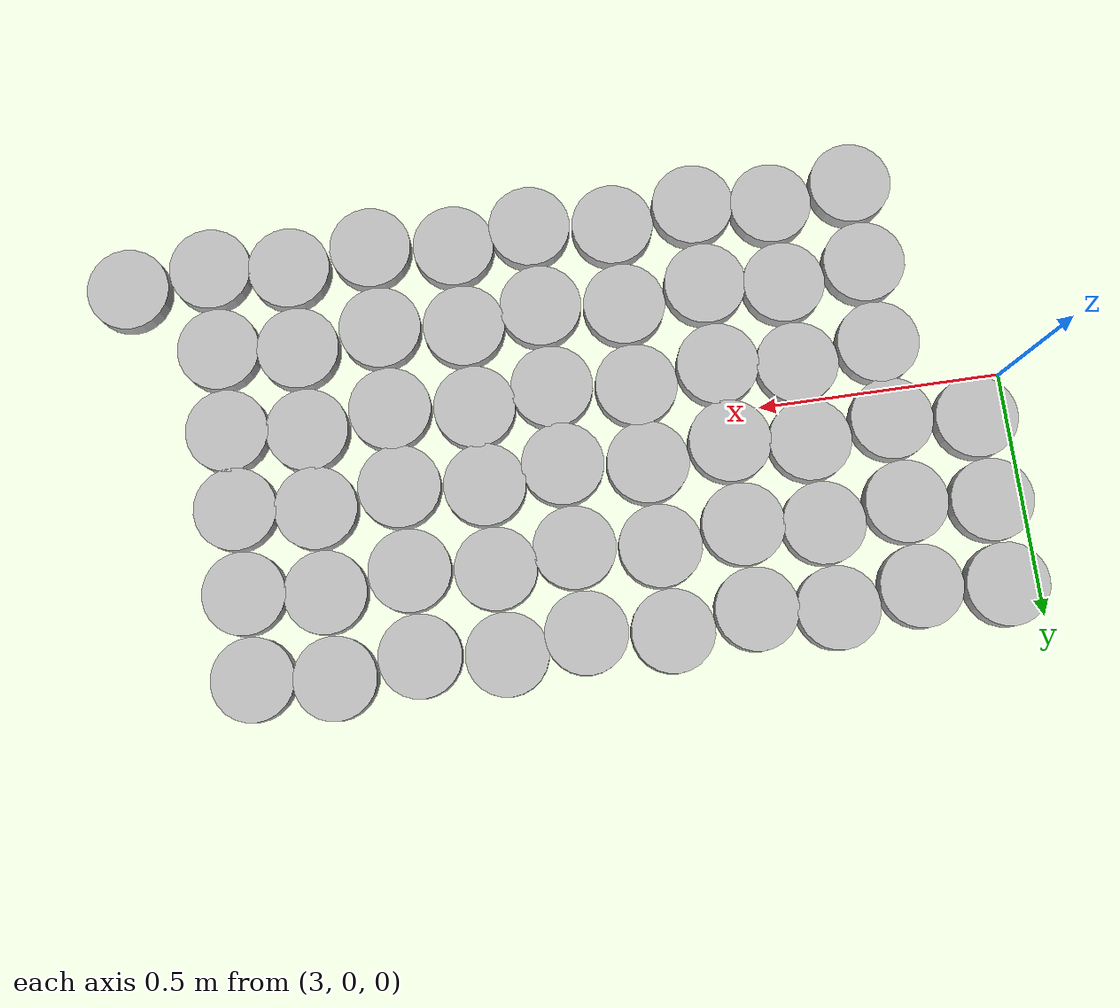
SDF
<sdf version="1.6">
 <world name="default">
  <model name="SnowPuck-9-3-0">
   <pose>3.08 0.09 0.05  0 0 0</pose>
   <link name="link">
    <inertial>
     <mass>0.01</mass>
     <inertia><ixx>0.145833</ixx><ixy>0</ixy><ixz>0</ixz><iyy>0.145833</iyy><iyz>0</iyz><izz>0.125</izz></inertia>
    </inertial>
    <collision name="collision">
     <geometry><cylinder><radius>.05</radius><length>0.04</length></cylinder></geometry>
    </collision>
    <visual name="visual">
     <geometry><cylinder><radius>.083333</radius><length>0.05</length></cylinder></geometry>
    </visual>
   </link>
  </model>
  <model name="SnowPuck-9-4-0">
   <pose>3.08 0.26 0.05  0 0 0</pose>
   <link name="link">
    <inertial>
     <mass>0.01</mass>
     <inertia><ixx>0.145833</ixx><ixy>0</ixy><ixz>0</ixz><iyy>0.145833</iyy><iyz>0</iyz><izz>0.125</izz></inertia>
    </inertial>
    <collision name="collision">
     <geometry><cylinder><radius>.05</radius><length>0.04</length></cylinder></geometry>
    </collision>
    <visual name="visual">
     <geometry><cylinder><radius>.083333</radius><length>0.05</length></cylinder></geometry>
    </visual>
   </link>
  </model>
  <model name="SnowPuck-9-5-0">
   <pose>3.08 0.43 0.05  0 0 0</pose>
   <link name="link">
    <inertial>
     <mass>0.01</mass>
     <inertia><ixx>0.145833</ixx><ixy>0</ixy><ixz>0</ixz><iyy>0.145833</iyy><iyz>0</iyz><izz>0.125</izz></inertia>
    </inertial>
    <collision name="collision">
     <geometry><cylinder><radius>.05</radius><length>0.04</length></cylinder></geometry>
    </collision>
    <visual name="visual">
     <geometry><cylinder><radius>.083333</radius><length>0.05</length></cylinder></geometry>
    </visual>
   </link>
  </model>
  <model name="SnowPuck-10-0-0">
   <pose>3.25 -0.43 0.05  0 0 0</pose>
   <link name="link">
    <inertial>
     <mass>0.01</mass>
     <inertia><ixx>0.145833</ixx><ixy>0</ixy><ixz>0</ixz><iyy>0.145833</iyy><iyz>0</iyz><izz>0.125</izz></inertia>
    </inertial>
    <collision name="collision">
     <geometry><cylinder><radius>.05</radius><length>0.04</length></cylinder></geometry>
    </collision>
    <visual name="visual">
     <geometry><cylinder><radius>.083333</radius><length>0.05</length></cylinder></geometry>
    </visual>
   </link>
  </model>
  <model name="SnowPuck-10-1-0">
   <pose>3.25 -0.26 0.05  0 0 0</pose>
   <link name="link">
    <inertial>
     <mass>0.01</mass>
     <inertia><ixx>0.145833</ixx><ixy>0</ixy><ixz>0</ixz><iyy>0.145833</iyy><iyz>0</iyz><izz>0.125</izz></inertia>
    </inertial>
    <collision name="collision">
     <geometry><cylinder><radius>.05</radius><length>0.04</length></cylinder></geometry>
    </collision>
    <visual name="visual">
     <geometry><cylinder><radius>.083333</radius><length>0.05</length></cylinder></geometry>
    </visual>
   </link>
  </model>
  <model name="SnowPuck-10-2-0">
   <pose>3.25 -0.09 0.05  0 0 0</pose>
   <link name="link">
    <inertial>
     <mass>0.01</mass>
     <inertia><ixx>0.145833</ixx><ixy>0</ixy><ixz>0</ixz><iyy>0.145833</iyy><iyz>0</iyz><izz>0.125</izz></inertia>
    </inertial>
    <collision name="collision">
     <geometry><cylinder><radius>.05</radius><length>0.04</length></cylinder></geometry>
    </collision>
    <visual name="visual">
     <geometry><cylinder><radius>.083333</radius><length>0.05</length></cylinder></geometry>
    </visual>
   </link>
  </model>
  <model name="SnowPuck-10-3-0">
   <pose>3.25 0.07 0.05  0 0 0</pose>
   <link name="link">
    <inertial>
     <mass>0.01</mass>
     <inertia><ixx>0.145833</ixx><ixy>0</ixy><ixz>0</ixz><iyy>0.145833</iyy><iyz>0</iyz><izz>0.125</izz></inertia>
    </inertial>
    <collision name="collision">
     <geometry><cylinder><radius>.05</radius><length>0.04</length></cylinder></geometry>
    </collision>
    <visual name="visual">
     <geometry><cylinder><radius>.083333</radius><length>0.05</length></cylinder></geometry>
    </visual>
   </link>
  </model>
  <model name="SnowPuck-10-4-0">
   <pose>3.25 0.24 0.05  0 0 0</pose>
   <link name="link">
    <inertial>
     <mass>0.01</mass>
     <inertia><ixx>0.145833</ixx><ixy>0</ixy><ixz>0</ixz><iyy>0.145833</iyy><iyz>0</iyz><izz>0.125</izz></inertia>
    </inertial>
    <collision name="collision">
     <geometry><cylinder><radius>.05</radius><length>0.04</length></cylinder></geometry>
    </collision>
    <visual name="visual">
     <geometry><cylinder><radius>.083333</radius><length>0.05</length></cylinder></geometry>
    </visual>
   </link>
  </model>
  <model name="SnowPuck-10-5-0">
   <pose>3.25 0.41 0.05  0 0 0</pose>
   <link name="link">
    <inertial>
     <mass>0.01</mass>
     <inertia><ixx>0.145833</ixx><ixy>0</ixy><ixz>0</ixz><iyy>0.145833</iyy><iyz>0</iyz><izz>0.125</izz></inertia>
    </inertial>
    <collision name="collision">
     <geometry><cylinder><radius>.05</radius><length>0.04</length></cylinder></geometry>
    </collision>
    <visual name="visual">
     <geometry><cylinder><radius>.083333</radius><length>0.05</length></cylinder></geometry>
    </visual>
   </link>
  </model>
  <model name="SnowPuck-11-0-0">
   <pose>3.42 -0.41 0.05  0 0 0</pose>
   <link name="link">
    <inertial>
     <mass>0.01</mass>
     <inertia><ixx>0.145833</ixx><ixy>0</ixy><ixz>0</ixz><iyy>0.145833</iyy><iyz>0</iyz><izz>0.125</izz></inertia>
    </inertial>
    <collision name="collision">
     <geometry><cylinder><radius>.05</radius><length>0.04</length></cylinder></geometry>
    </collision>
    <visual name="visual">
     <geometry><cylinder><radius>.083333</radius><length>0.05</length></cylinder></geometry>
    </visual>
   </link>
  </model>
  <model name="SnowPuck-11-1-0">
   <pose>3.42 -0.24 0.05  0 0 0</pose>
   <link name="link">
    <inertial>
     <mass>0.01</mass>
     <inertia><ixx>0.145833</ixx><ixy>0</ixy><ixz>0</ixz><iyy>0.145833</iyy><iyz>0</iyz><izz>0.125</izz></inertia>
    </inertial>
    <collision name="collision">
     <geometry><cylinder><radius>.05</radius><length>0.04</length></cylinder></geometry>
    </collision>
    <visual name="visual">
     <geometry><cylinder><radius>.083333</radius><length>0.05</length></cylinder></geometry>
    </visual>
   </link>
  </model>
  <model name="SnowPuck-11-2-0">
   <pose>3.42 -0.07 0.05  0 0 0</pose>
   <link name="link">
    <inertial>
     <mass>0.01</mass>
     <inertia><ixx>0.145833</ixx><ixy>0</ixy><ixz>0</ixz><iyy>0.145833</iyy><iyz>0</iyz><izz>0.125</izz></inertia>
    </inertial>
    <collision name="collision">
     <geometry><cylinder><radius>.05</radius><length>0.04</length></cylinder></geometry>
    </collision>
    <visual name="visual">
     <geometry><cylinder><radius>.083333</radius><length>0.05</length></cylinder></geometry>
    </visual>
   </link>
  </model>
  <model name="SnowPuck-11-3-0">
   <pose>3.42 0.09 0.05  0 0 0</pose>
   <link name="link">
    <inertial>
     <mass>0.01</mass>
     <inertia><ixx>0.145833</ixx><ixy>0</ixy><ixz>0</ixz><iyy>0.145833</iyy><iyz>0</iyz><izz>0.125</izz></inertia>
    </inertial>
    <collision name="collision">
     <geometry><cylinder><radius>.05</radius><length>0.04</length></cylinder></geometry>
    </collision>
    <visual name="visual">
     <geometry><cylinder><radius>.083333</radius><length>0.05</length></cylinder></geometry>
    </visual>
   </link>
  </model>
  <model name="SnowPuck-11-4-0">
   <pose>3.42 0.26 0.05  0 0 0</pose>
   <link name="link">
    <inertial>
     <mass>0.01</mass>
     <inertia><ixx>0.145833</ixx><ixy>0</ixy><ixz>0</ixz><iyy>0.145833</iyy><iyz>0</iyz><izz>0.125</izz></inertia>
    </inertial>
    <collision name="collision">
     <geometry><cylinder><radius>.05</radius><length>0.04</length></cylinder></geometry>
    </collision>
    <visual name="visual">
     <geometry><cylinder><radius>.083333</radius><length>0.05</length></cylinder></geometry>
    </visual>
   </link>
  </model>
  <model name="SnowPuck-11-5-0">
   <pose>3.42 0.43 0.05  0 0 0</pose>
   <link name="link">
    <inertial>
     <mass>0.01</mass>
     <inertia><ixx>0.145833</ixx><ixy>0</ixy><ixz>0</ixz><iyy>0.145833</iyy><iyz>0</iyz><izz>0.125</izz></inertia>
    </inertial>
    <collision name="collision">
     <geometry><cylinder><radius>.05</radius><length>0.04</length></cylinder></geometry>
    </collision>
    <visual name="visual">
     <geometry><cylinder><radius>.083333</radius><length>0.05</length></cylinder></geometry>
    </visual>
   </link>
  </model>
  <model name="SnowPuck-12-0-0">
   <pose>3.58 -0.43 0.05  0 0 0</pose>
   <link name="link">
    <inertial>
     <mass>0.01</mass>
     <inertia><ixx>0.145833</ixx><ixy>0</ixy><ixz>0</ixz><iyy>0.145833</iyy><iyz>0</iyz><izz>0.125</izz></inertia>
    </inertial>
    <collision name="collision">
     <geometry><cylinder><radius>.05</radius><length>0.04</length></cylinder></geometry>
    </collision>
    <visual name="visual">
     <geometry><cylinder><radius>.083333</radius><length>0.05</length></cylinder></geometry>
    </visual>
   </link>
  </model>
  <model name="SnowPuck-12-1-0">
   <pose>3.58 -0.26 0.05  0 0 0</pose>
   <link name="link">
    <inertial>
     <mass>0.01</mass>
     <inertia><ixx>0.145833</ixx><ixy>0</ixy><ixz>0</ixz><iyy>0.145833</iyy><iyz>0</iyz><izz>0.125</izz></inertia>
    </inertial>
    <collision name="collision">
     <geometry><cylinder><radius>.05</radius><length>0.04</length></cylinder></geometry>
    </collision>
    <visual name="visual">
     <geometry><cylinder><radius>.083333</radius><length>0.05</length></cylinder></geometry>
    </visual>
   </link>
  </model>
  <model name="SnowPuck-12-2-0">
   <pose>3.58 -0.09 0.05  0 0 0</pose>
   <link name="link">
    <inertial>
     <mass>0.01</mass>
     <inertia><ixx>0.145833</ixx><ixy>0</ixy><ixz>0</ixz><iyy>0.145833</iyy><iyz>0</iyz><izz>0.125</izz></inertia>
    </inertial>
    <collision name="collision">
     <geometry><cylinder><radius>.05</radius><length>0.04</length></cylinder></geometry>
    </collision>
    <visual name="visual">
     <geometry><cylinder><radius>.083333</radius><length>0.05</length></cylinder></geometry>
    </visual>
   </link>
  </model>
  <model name="SnowPuck-12-3-0">
   <pose>3.58 0.07 0.05  0 0 0</pose>
   <link name="link">
    <inertial>
     <mass>0.01</mass>
     <inertia><ixx>0.145833</ixx><ixy>0</ixy><ixz>0</ixz><iyy>0.145833</iyy><iyz>0</iyz><izz>0.125</izz></inertia>
    </inertial>
    <collision name="collision">
     <geometry><cylinder><radius>.05</radius><length>0.04</length></cylinder></geometry>
    </collision>
    <visual name="visual">
     <geometry><cylinder><radius>.083333</radius><length>0.05</length></cylinder></geometry>
    </visual>
   </link>
  </model>
  <model name="SnowPuck-12-4-0">
   <pose>3.58 0.24 0.05  0 0 0</pose>
   <link name="link">
    <inertial>
     <mass>0.01</mass>
     <inertia><ixx>0.145833</ixx><ixy>0</ixy><ixz>0</ixz><iyy>0.145833</iyy><iyz>0</iyz><izz>0.125</izz></inertia>
    </inertial>
    <collision name="collision">
     <geometry><cylinder><radius>.05</radius><length>0.04</length></cylinder></geometry>
    </collision>
    <visual name="visual">
     <geometry><cylinder><radius>.083333</radius><length>0.05</length></cylinder></geometry>
    </visual>
   </link>
  </model>
  <model name="SnowPuck-12-5-0">
   <pose>3.58 0.41 0.05  0 0 0</pose>
   <link name="link">
    <inertial>
     <mass>0.01</mass>
     <inertia><ixx>0.145833</ixx><ixy>0</ixy><ixz>0</ixz><iyy>0.145833</iyy><iyz>0</iyz><izz>0.125</izz></inertia>
    </inertial>
    <collision name="collision">
     <geometry><cylinder><radius>.05</radius><length>0.04</length></cylinder></geometry>
    </collision>
    <visual name="visual">
     <geometry><cylinder><radius>.083333</radius><length>0.05</length></cylinder></geometry>
    </visual>
   </link>
  </model>
  <model name="SnowPuck-13-0-0">
   <pose>3.75 -0.41 0.05  0 0 0</pose>
   <link name="link">
    <inertial>
     <mass>0.01</mass>
     <inertia><ixx>0.145833</ixx><ixy>0</ixy><ixz>0</ixz><iyy>0.145833</iyy><iyz>0</iyz><izz>0.125</izz></inertia>
    </inertial>
    <collision name="collision">
     <geometry><cylinder><radius>.05</radius><length>0.04</length></cylinder></geometry>
    </collision>
    <visual name="visual">
     <geometry><cylinder><radius>.083333</radius><length>0.05</length></cylinder></geometry>
    </visual>
   </link>
  </model>
  <model name="SnowPuck-13-1-0">
   <pose>3.75 -0.24 0.05  0 0 0</pose>
   <link name="link">
    <inertial>
     <mass>0.01</mass>
     <inertia><ixx>0.145833</ixx><ixy>0</ixy><ixz>0</ixz><iyy>0.145833</iyy><iyz>0</iyz><izz>0.125</izz></inertia>
    </inertial>
    <collision name="collision">
     <geometry><cylinder><radius>.05</radius><length>0.04</length></cylinder></geometry>
    </collision>
    <visual name="visual">
     <geometry><cylinder><radius>.083333</radius><length>0.05</length></cylinder></geometry>
    </visual>
   </link>
  </model>
  <model name="SnowPuck-13-2-0">
   <pose>3.75 -0.07 0.05  0 0 0</pose>
   <link name="link">
    <inertial>
     <mass>0.01</mass>
     <inertia><ixx>0.145833</ixx><ixy>0</ixy><ixz>0</ixz><iyy>0.145833</iyy><iyz>0</iyz><izz>0.125</izz></inertia>
    </inertial>
    <collision name="collision">
     <geometry><cylinder><radius>.05</radius><length>0.04</length></cylinder></geometry>
    </collision>
    <visual name="visual">
     <geometry><cylinder><radius>.083333</radius><length>0.05</length></cylinder></geometry>
    </visual>
   </link>
  </model>
  <model name="SnowPuck-13-3-0">
   <pose>3.75 0.09 0.05  0 0 0</pose>
   <link name="link">
    <inertial>
     <mass>0.01</mass>
     <inertia><ixx>0.145833</ixx><ixy>0</ixy><ixz>0</ixz><iyy>0.145833</iyy><iyz>0</iyz><izz>0.125</izz></inertia>
    </inertial>
    <collision name="collision">
     <geometry><cylinder><radius>.05</radius><length>0.04</length></cylinder></geometry>
    </collision>
    <visual name="visual">
     <geometry><cylinder><radius>.083333</radius><length>0.05</length></cylinder></geometry>
    </visual>
   </link>
  </model>
  <model name="SnowPuck-13-4-0">
   <pose>3.75 0.26 0.05  0 0 0</pose>
   <link name="link">
    <inertial>
     <mass>0.01</mass>
     <inertia><ixx>0.145833</ixx><ixy>0</ixy><ixz>0</ixz><iyy>0.145833</iyy><iyz>0</iyz><izz>0.125</izz></inertia>
    </inertial>
    <collision name="collision">
     <geometry><cylinder><radius>.05</radius><length>0.04</length></cylinder></geometry>
    </collision>
    <visual name="visual">
     <geometry><cylinder><radius>.083333</radius><length>0.05</length></cylinder></geometry>
    </visual>
   </link>
  </model>
  <model name="SnowPuck-13-5-0">
   <pose>3.75 0.43 0.05  0 0 0</pose>
   <link name="link">
    <inertial>
     <mass>0.01</mass>
     <inertia><ixx>0.145833</ixx><ixy>0</ixy><ixz>0</ixz><iyy>0.145833</iyy><iyz>0</iyz><izz>0.125</izz></inertia>
    </inertial>
    <collision name="collision">
     <geometry><cylinder><radius>.05</radius><length>0.04</length></cylinder></geometry>
    </collision>
    <visual name="visual">
     <geometry><cylinder><radius>.083333</radius><length>0.05</length></cylinder></geometry>
    </visual>
   </link>
  </model>
  <model name="SnowPuck-14-0-0">
   <pose>3.92 -0.43 0.05  0 0 0</pose>
   <link name="link">
    <inertial>
     <mass>0.01</mass>
     <inertia><ixx>0.145833</ixx><ixy>0</ixy><ixz>0</ixz><iyy>0.145833</iyy><iyz>0</iyz><izz>0.125</izz></inertia>
    </inertial>
    <collision name="collision">
     <geometry><cylinder><radius>.05</radius><length>0.04</length></cylinder></geometry>
    </collision>
    <visual name="visual">
     <geometry><cylinder><radius>.083333</radius><length>0.05</length></cylinder></geometry>
    </visual>
   </link>
  </model>
  <model name="SnowPuck-14-1-0">
   <pose>3.92 -0.26 0.05  0 0 0</pose>
   <link name="link">
    <inertial>
     <mass>0.01</mass>
     <inertia><ixx>0.145833</ixx><ixy>0</ixy><ixz>0</ixz><iyy>0.145833</iyy><iyz>0</iyz><izz>0.125</izz></inertia>
    </inertial>
    <collision name="collision">
     <geometry><cylinder><radius>.05</radius><length>0.04</length></cylinder></geometry>
    </collision>
    <visual name="visual">
     <geometry><cylinder><radius>.083333</radius><length>0.05</length></cylinder></geometry>
    </visual>
   </link>
  </model>
  <model name="SnowPuck-14-2-0">
   <pose>3.92 -0.09 0.05  0 0 0</pose>
   <link name="link">
    <inertial>
     <mass>0.01</mass>
     <inertia><ixx>0.145833</ixx><ixy>0</ixy><ixz>0</ixz><iyy>0.145833</iyy><iyz>0</iyz><izz>0.125</izz></inertia>
    </inertial>
    <collision name="collision">
     <geometry><cylinder><radius>.05</radius><length>0.04</length></cylinder></geometry>
    </collision>
    <visual name="visual">
     <geometry><cylinder><radius>.083333</radius><length>0.05</length></cylinder></geometry>
    </visual>
   </link>
  </model>
  <model name="SnowPuck-14-3-0">
   <pose>3.92 0.07 0.05  0 0 0</pose>
   <link name="link">
    <inertial>
     <mass>0.01</mass>
     <inertia><ixx>0.145833</ixx><ixy>0</ixy><ixz>0</ixz><iyy>0.145833</iyy><iyz>0</iyz><izz>0.125</izz></inertia>
    </inertial>
    <collision name="collision">
     <geometry><cylinder><radius>.05</radius><length>0.04</length></cylinder></geometry>
    </collision>
    <visual name="visual">
     <geometry><cylinder><radius>.083333</radius><length>0.05</length></cylinder></geometry>
    </visual>
   </link>
  </model>
  <model name="SnowPuck-14-4-0">
   <pose>3.92 0.24 0.05  0 0 0</pose>
   <link name="link">
    <inertial>
     <mass>0.01</mass>
     <inertia><ixx>0.145833</ixx><ixy>0</ixy><ixz>0</ixz><iyy>0.145833</iyy><iyz>0</iyz><izz>0.125</izz></inertia>
    </inertial>
    <collision name="collision">
     <geometry><cylinder><radius>.05</radius><length>0.04</length></cylinder></geometry>
    </collision>
    <visual name="visual">
     <geometry><cylinder><radius>.083333</radius><length>0.05</length></cylinder></geometry>
    </visual>
   </link>
  </model>
  <model name="SnowPuck-14-5-0">
   <pose>3.92 0.41 0.05  0 0 0</pose>
   <link name="link">
    <inertial>
     <mass>0.01</mass>
     <inertia><ixx>0.145833</ixx><ixy>0</ixy><ixz>0</ixz><iyy>0.145833</iyy><iyz>0</iyz><izz>0.125</izz></inertia>
    </inertial>
    <collision name="collision">
     <geometry><cylinder><radius>.05</radius><length>0.04</length></cylinder></geometry>
    </collision>
    <visual name="visual">
     <geometry><cylinder><radius>.083333</radius><length>0.05</length></cylinder></geometry>
    </visual>
   </link>
  </model>
  <model name="SnowPuck-15-0-0">
   <pose>4.08 -0.41 0.05  0 0 0</pose>
   <link name="link">
    <inertial>
     <mass>0.01</mass>
     <inertia><ixx>0.145833</ixx><ixy>0</ixy><ixz>0</ixz><iyy>0.145833</iyy><iyz>0</iyz><izz>0.125</izz></inertia>
    </inertial>
    <collision name="collision">
     <geometry><cylinder><radius>.05</radius><length>0.04</length></cylinder></geometry>
    </collision>
    <visual name="visual">
     <geometry><cylinder><radius>.083333</radius><length>0.05</length></cylinder></geometry>
    </visual>
   </link>
  </model>
  <model name="SnowPuck-15-1-0">
   <pose>4.08 -0.24 0.05  0 0 0</pose>
   <link name="link">
    <inertial>
     <mass>0.01</mass>
     <inertia><ixx>0.145833</ixx><ixy>0</ixy><ixz>0</ixz><iyy>0.145833</iyy><iyz>0</iyz><izz>0.125</izz></inertia>
    </inertial>
    <collision name="collision">
     <geometry><cylinder><radius>.05</radius><length>0.04</length></cylinder></geometry>
    </collision>
    <visual name="visual">
     <geometry><cylinder><radius>.083333</radius><length>0.05</length></cylinder></geometry>
    </visual>
   </link>
  </model>
  <model name="SnowPuck-15-2-0">
   <pose>4.08 -0.07 0.05  0 0 0</pose>
   <link name="link">
    <inertial>
     <mass>0.01</mass>
     <inertia><ixx>0.145833</ixx><ixy>0</ixy><ixz>0</ixz><iyy>0.145833</iyy><iyz>0</iyz><izz>0.125</izz></inertia>
    </inertial>
    <collision name="collision">
     <geometry><cylinder><radius>.05</radius><length>0.04</length></cylinder></geometry>
    </collision>
    <visual name="visual">
     <geometry><cylinder><radius>.083333</radius><length>0.05</length></cylinder></geometry>
    </visual>
   </link>
  </model>
  <model name="SnowPuck-15-3-0">
   <pose>4.08 0.09 0.05  0 0 0</pose>
   <link name="link">
    <inertial>
     <mass>0.01</mass>
     <inertia><ixx>0.145833</ixx><ixy>0</ixy><ixz>0</ixz><iyy>0.145833</iyy><iyz>0</iyz><izz>0.125</izz></inertia>
    </inertial>
    <collision name="collision">
     <geometry><cylinder><radius>.05</radius><length>0.04</length></cylinder></geometry>
    </collision>
    <visual name="visual">
     <geometry><cylinder><radius>.083333</radius><length>0.05</length></cylinder></geometry>
    </visual>
   </link>
  </model>
  <model name="SnowPuck-15-4-0">
   <pose>4.08 0.26 0.05  0 0 0</pose>
   <link name="link">
    <inertial>
     <mass>0.01</mass>
     <inertia><ixx>0.145833</ixx><ixy>0</ixy><ixz>0</ixz><iyy>0.145833</iyy><iyz>0</iyz><izz>0.125</izz></inertia>
    </inertial>
    <collision name="collision">
     <geometry><cylinder><radius>.05</radius><length>0.04</length></cylinder></geometry>
    </collision>
    <visual name="visual">
     <geometry><cylinder><radius>.083333</radius><length>0.05</length></cylinder></geometry>
    </visual>
   </link>
  </model>
  <model name="SnowPuck-15-5-0">
   <pose>4.08 0.43 0.05  0 0 0</pose>
   <link name="link">
    <inertial>
     <mass>0.01</mass>
     <inertia><ixx>0.145833</ixx><ixy>0</ixy><ixz>0</ixz><iyy>0.145833</iyy><iyz>0</iyz><izz>0.125</izz></inertia>
    </inertial>
    <collision name="collision">
     <geometry><cylinder><radius>.05</radius><length>0.04</length></cylinder></geometry>
    </collision>
    <visual name="visual">
     <geometry><cylinder><radius>.083333</radius><length>0.05</length></cylinder></geometry>
    </visual>
   </link>
  </model>
  <model name="SnowPuck-16-0-0">
   <pose>4.25 -0.43 0.05  0 0 0</pose>
   <link name="link">
    <inertial>
     <mass>0.01</mass>
     <inertia><ixx>0.145833</ixx><ixy>0</ixy><ixz>0</ixz><iyy>0.145833</iyy><iyz>0</iyz><izz>0.125</izz></inertia>
    </inertial>
    <collision name="collision">
     <geometry><cylinder><radius>.05</radius><length>0.04</length></cylinder></geometry>
    </collision>
    <visual name="visual">
     <geometry><cylinder><radius>.083333</radius><length>0.05</length></cylinder></geometry>
    </visual>
   </link>
  </model>
  <model name="SnowPuck-16-1-0">
   <pose>4.25 -0.26 0.05  0 0 0</pose>
   <link name="link">
    <inertial>
     <mass>0.01</mass>
     <inertia><ixx>0.145833</ixx><ixy>0</ixy><ixz>0</ixz><iyy>0.145833</iyy><iyz>0</iyz><izz>0.125</izz></inertia>
    </inertial>
    <collision name="collision">
     <geometry><cylinder><radius>.05</radius><length>0.04</length></cylinder></geometry>
    </collision>
    <visual name="visual">
     <geometry><cylinder><radius>.083333</radius><length>0.05</length></cylinder></geometry>
    </visual>
   </link>
  </model>
  <model name="SnowPuck-16-2-0">
   <pose>4.25 -0.09 0.05  0 0 0</pose>
   <link name="link">
    <inertial>
     <mass>0.01</mass>
     <inertia><ixx>0.145833</ixx><ixy>0</ixy><ixz>0</ixz><iyy>0.145833</iyy><iyz>0</iyz><izz>0.125</izz></inertia>
    </inertial>
    <collision name="collision">
     <geometry><cylinder><radius>.05</radius><length>0.04</length></cylinder></geometry>
    </collision>
    <visual name="visual">
     <geometry><cylinder><radius>.083333</radius><length>0.05</length></cylinder></geometry>
    </visual>
   </link>
  </model>
  <model name="SnowPuck-16-3-0">
   <pose>4.25 0.07 0.05  0 0 0</pose>
   <link name="link">
    <inertial>
     <mass>0.01</mass>
     <inertia><ixx>0.145833</ixx><ixy>0</ixy><ixz>0</ixz><iyy>0.145833</iyy><iyz>0</iyz><izz>0.125</izz></inertia>
    </inertial>
    <collision name="collision">
     <geometry><cylinder><radius>.05</radius><length>0.04</length></cylinder></geometry>
    </collision>
    <visual name="visual">
     <geometry><cylinder><radius>.083333</radius><length>0.05</length></cylinder></geometry>
    </visual>
   </link>
  </model>
  <model name="SnowPuck-16-4-0">
   <pose>4.25 0.24 0.05  0 0 0</pose>
   <link name="link">
    <inertial>
     <mass>0.01</mass>
     <inertia><ixx>0.145833</ixx><ixy>0</ixy><ixz>0</ixz><iyy>0.145833</iyy><iyz>0</iyz><izz>0.125</izz></inertia>
    </inertial>
    <collision name="collision">
     <geometry><cylinder><radius>.05</radius><length>0.04</length></cylinder></geometry>
    </collision>
    <visual name="visual">
     <geometry><cylinder><radius>.083333</radius><length>0.05</length></cylinder></geometry>
    </visual>
   </link>
  </model>
  <model name="SnowPuck-16-5-0">
   <pose>4.25 0.41 0.05  0 0 0</pose>
   <link name="link">
    <inertial>
     <mass>0.01</mass>
     <inertia><ixx>0.145833</ixx><ixy>0</ixy><ixz>0</ixz><iyy>0.145833</iyy><iyz>0</iyz><izz>0.125</izz></inertia>
    </inertial>
    <collision name="collision">
     <geometry><cylinder><radius>.05</radius><length>0.04</length></cylinder></geometry>
    </collision>
    <visual name="visual">
     <geometry><cylinder><radius>.083333</radius><length>0.05</length></cylinder></geometry>
    </visual>
   </link>
  </model>
  <model name="SnowPuck-17-0-0">
   <pose>4.42 -0.41 0.05  0 0 0</pose>
   <link name="link">
    <inertial>
     <mass>0.01</mass>
     <inertia><ixx>0.145833</ixx><ixy>0</ixy><ixz>0</ixz><iyy>0.145833</iyy><iyz>0</iyz><izz>0.125</izz></inertia>
    </inertial>
    <collision name="collision">
     <geometry><cylinder><radius>.05</radius><length>0.04</length></cylinder></geometry>
    </collision>
    <visual name="visual">
     <geometry><cylinder><radius>.083333</radius><length>0.05</length></cylinder></geometry>
    </visual>
   </link>
  </model>
  <model name="SnowPuck-17-1-0">
   <pose>4.42 -0.24 0.05  0 0 0</pose>
   <link name="link">
    <inertial>
     <mass>0.01</mass>
     <inertia><ixx>0.145833</ixx><ixy>0</ixy><ixz>0</ixz><iyy>0.145833</iyy><iyz>0</iyz><izz>0.125</izz></inertia>
    </inertial>
    <collision name="collision">
     <geometry><cylinder><radius>.05</radius><length>0.04</length></cylinder></geometry>
    </collision>
    <visual name="visual">
     <geometry><cylinder><radius>.083333</radius><length>0.05</length></cylinder></geometry>
    </visual>
   </link>
  </model>
  <model name="SnowPuck-17-2-0">
   <pose>4.42 -0.07 0.05  0 0 0</pose>
   <link name="link">
    <inertial>
     <mass>0.01</mass>
     <inertia><ixx>0.145833</ixx><ixy>0</ixy><ixz>0</ixz><iyy>0.145833</iyy><iyz>0</iyz><izz>0.125</izz></inertia>
    </inertial>
    <collision name="collision">
     <geometry><cylinder><radius>.05</radius><length>0.04</length></cylinder></geometry>
    </collision>
    <visual name="visual">
     <geometry><cylinder><radius>.083333</radius><length>0.05</length></cylinder></geometry>
    </visual>
   </link>
  </model>
  <model name="SnowPuck-17-3-0">
   <pose>4.42 0.09 0.05  0 0 0</pose>
   <link name="link">
    <inertial>
     <mass>0.01</mass>
     <inertia><ixx>0.145833</ixx><ixy>0</ixy><ixz>0</ixz><iyy>0.145833</iyy><iyz>0</iyz><izz>0.125</izz></inertia>
    </inertial>
    <collision name="collision">
     <geometry><cylinder><radius>.05</radius><length>0.04</length></cylinder></geometry>
    </collision>
    <visual name="visual">
     <geometry><cylinder><radius>.083333</radius><length>0.05</length></cylinder></geometry>
    </visual>
   </link>
  </model>
  <model name="SnowPuck-17-4-0">
   <pose>4.42 0.26 0.05  0 0 0</pose>
   <link name="link">
    <inertial>
     <mass>0.01</mass>
     <inertia><ixx>0.145833</ixx><ixy>0</ixy><ixz>0</ixz><iyy>0.145833</iyy><iyz>0</iyz><izz>0.125</izz></inertia>
    </inertial>
    <collision name="collision">
     <geometry><cylinder><radius>.05</radius><length>0.04</length></cylinder></geometry>
    </collision>
    <visual name="visual">
     <geometry><cylinder><radius>.083333</radius><length>0.05</length></cylinder></geometry>
    </visual>
   </link>
  </model>
  <model name="SnowPuck-17-5-0">
   <pose>4.42 0.43 0.05  0 0 0</pose>
   <link name="link">
    <inertial>
     <mass>0.01</mass>
     <inertia><ixx>0.145833</ixx><ixy>0</ixy><ixz>0</ixz><iyy>0.145833</iyy><iyz>0</iyz><izz>0.125</izz></inertia>
    </inertial>
    <collision name="collision">
     <geometry><cylinder><radius>.05</radius><length>0.04</length></cylinder></geometry>
    </collision>
    <visual name="visual">
     <geometry><cylinder><radius>.083333</radius><length>0.05</length></cylinder></geometry>
    </visual>
   </link>
  </model>
  <model name="SnowPuck-18-0-0">
   <pose>4.58 -0.43 0.05  0 0 0</pose>
   <link name="link">
    <inertial>
     <mass>0.01</mass>
     <inertia><ixx>0.145833</ixx><ixy>0</ixy><ixz>0</ixz><iyy>0.145833</iyy><iyz>0</iyz><izz>0.125</izz></inertia>
    </inertial>
    <collision name="collision">
     <geometry><cylinder><radius>.05</radius><length>0.04</length></cylinder></geometry>
    </collision>
    <visual name="visual">
     <geometry><cylinder><radius>.083333</radius><length>0.05</length></cylinder></geometry>
    </visual>
   </link>
  </model>
  <model name="SnowPuck-18-1-0">
   <pose>4.58 -0.26 0.05  0 0 0</pose>
   <link name="link">
    <inertial>
     <mass>0.01</mass>
     <inertia><ixx>0.145833</ixx><ixy>0</ixy><ixz>0</ixz><iyy>0.145833</iyy><iyz>0</iyz><izz>0.125</izz></inertia>
    </inertial>
    <collision name="collision">
     <geometry><cylinder><radius>.05</radius><length>0.04</length></cylinder></geometry>
    </collision>
    <visual name="visual">
     <geometry><cylinder><radius>.083333</radius><length>0.05</length></cylinder></geometry>
    </visual>
   </link>
  </model>
  <model name="SnowPuck-18-2-0">
   <pose>4.58 -0.09 0.05  0 0 0</pose>
   <link name="link">
    <inertial>
     <mass>0.01</mass>
     <inertia><ixx>0.145833</ixx><ixy>0</ixy><ixz>0</ixz><iyy>0.145833</iyy><iyz>0</iyz><izz>0.125</izz></inertia>
    </inertial>
    <collision name="collision">
     <geometry><cylinder><radius>.05</radius><length>0.04</length></cylinder></geometry>
    </collision>
    <visual name="visual">
     <geometry><cylinder><radius>.083333</radius><length>0.05</length></cylinder></geometry>
    </visual>
   </link>
  </model>
  <model name="SnowPuck-18-3-0">
   <pose>4.58 0.07 0.05  0 0 0</pose>
   <link name="link">
    <inertial>
     <mass>0.01</mass>
     <inertia><ixx>0.145833</ixx><ixy>0</ixy><ixz>0</ixz><iyy>0.145833</iyy><iyz>0</iyz><izz>0.125</izz></inertia>
    </inertial>
    <collision name="collision">
     <geometry><cylinder><radius>.05</radius><length>0.04</length></cylinder></geometry>
    </collision>
    <visual name="visual">
     <geometry><cylinder><radius>.083333</radius><length>0.05</length></cylinder></geometry>
    </visual>
   </link>
  </model>
  <model name="SnowPuck-18-4-0">
   <pose>4.58 0.24 0.05  0 0 0</pose>
   <link name="link">
    <inertial>
     <mass>0.01</mass>
     <inertia><ixx>0.145833</ixx><ixy>0</ixy><ixz>0</ixz><iyy>0.145833</iyy><iyz>0</iyz><izz>0.125</izz></inertia>
    </inertial>
    <collision name="collision">
     <geometry><cylinder><radius>.05</radius><length>0.04</length></cylinder></geometry>
    </collision>
    <visual name="visual">
     <geometry><cylinder><radius>.083333</radius><length>0.05</length></cylinder></geometry>
    </visual>
   </link>
  </model>
  <model name="SnowPuck-18-5-0">
   <pose>4.58 0.41 0.05  0 0 0</pose>
   <link name="link">
    <inertial>
     <mass>0.01</mass>
     <inertia><ixx>0.145833</ixx><ixy>0</ixy><ixz>0</ixz><iyy>0.145833</iyy><iyz>0</iyz><izz>0.125</izz></inertia>
    </inertial>
    <collision name="collision">
     <geometry><cylinder><radius>.05</radius><length>0.04</length></cylinder></geometry>
    </collision>
    <visual name="visual">
     <geometry><cylinder><radius>.083333</radius><length>0.05</length></cylinder></geometry>
    </visual>
   </link>
  </model>
  <model name="SnowPuck-19-0-0">
   <pose>4.75 -0.41 0.05  0 0 0</pose>
   <link name="link">
    <inertial>
     <mass>0.01</mass>
     <inertia><ixx>0.145833</ixx><ixy>0</ixy><ixz>0</ixz><iyy>0.145833</iyy><iyz>0</iyz><izz>0.125</izz></inertia>
    </inertial>
    <collision name="collision">
     <geometry><cylinder><radius>.05</radius><length>0.04</length></cylinder></geometry>
    </collision>
    <visual name="visual">
     <geometry><cylinder><radius>.083333</radius><length>0.05</length></cylinder></geometry>
    </visual>
   </link>
  </model>
 </world>
</sdf>
